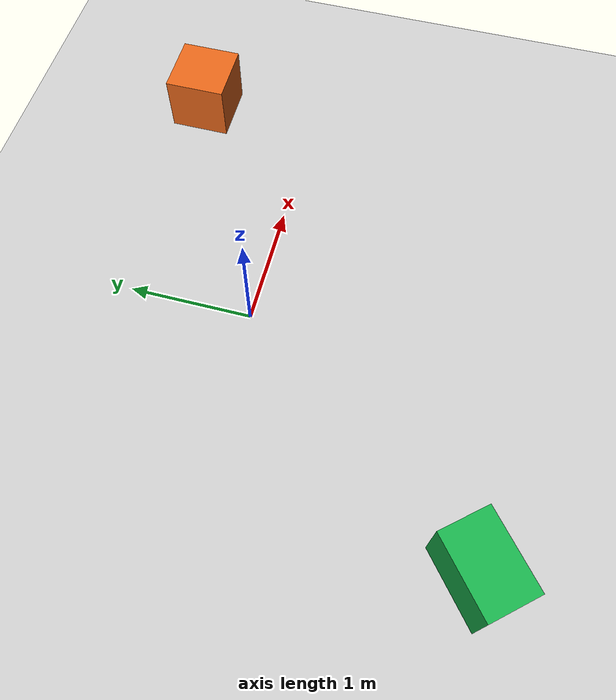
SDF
<?xml version="1.0" ?>
<sdf version="1.8">
  <world name="empty_arena">

    <physics name="1ms" type="ignored">
      <max_step_size>0.001</max_step_size>
      <real_time_factor>1.0</real_time_factor>
    </physics>

    <plugin filename="gz-sim-physics-system"
            name="gz::sim::systems::Physics"/>
    <plugin filename="gz-sim-user-commands-system"
            name="gz::sim::systems::UserCommands"/>
    <plugin filename="gz-sim-scene-broadcaster-system"
            name="gz::sim::systems::SceneBroadcaster"/>
    <plugin filename="gz-sim-imu-system"
            name="gz::sim::systems::Imu"/>
    <plugin filename="gz-sim-sensors-system"
            name="gz::sim::systems::Sensors">
      <render_engine>ogre2</render_engine>
    </plugin>

    <light type="directional" name="sun">
      <cast_shadows>true</cast_shadows>
      <pose>0 0 10 0 0 0</pose>
      <diffuse>1 1 1 1</diffuse>
      <specular>0.5 0.5 0.5 1</specular>
      <direction>-0.5 0.1 -0.9</direction>
    </light>

    <model name="ground_plane">
      <static>true</static>
      <link name="link">
        <collision name="c"><geometry><plane><normal>0 0 1</normal><size>50 50</size></plane></geometry></collision>
        <visual    name="v">
          <geometry><plane><normal>0 0 1</normal><size>50 50</size></plane></geometry>
          <material><ambient>0.8 0.8 0.8 1</ambient><diffuse>0.8 0.8 0.8 1</diffuse></material>
        </visual>
      </link>
    </model>

    <!-- A couple of obstacles -->
    <model name="box_a">
      <static>true</static>
      <pose>2 1 0.25 0 0 0</pose>
      <link name="l">
        <collision name="c"><geometry><box><size>0.5 0.5 0.5</size></box></geometry></collision>
        <visual    name="v"><geometry><box><size>0.5 0.5 0.5</size></box></geometry>
          <material><ambient>0.9 0.4 0.1 1</ambient><diffuse>0.9 0.4 0.1 1</diffuse></material>
        </visual>
      </link>
    </model>

    <model name="box_b">
      <static>true</static>
      <pose>-1.5 -2 0.25 0 0 0.7</pose>
      <link name="l">
        <collision name="c"><geometry><box><size>0.6 0.4 0.5</size></box></geometry></collision>
        <visual    name="v"><geometry><box><size>0.6 0.4 0.5</size></box></geometry>
          <material><ambient>0.1 0.7 0.3 1</ambient><diffuse>0.1 0.7 0.3 1</diffuse></material>
        </visual>
      </link>
    </model>

    <!-- Camara CENITAL: vista superior estatica a 25 m mirando hacia -Z.
         Publica gz.msgs.Image en /overhead/image (bridge en sim_summit). -->
    <model name="overhead_camera">
      <static>true</static>
      <pose>0 0 25 0 1.5707963 0</pose>
      <link name="link">
        <sensor name="overhead" type="camera">
          <topic>/overhead/image</topic>
          <update_rate>15</update_rate>
          <camera>
            <horizontal_fov>1.2</horizontal_fov>
            <image><width>800</width><height>800</height><format>R8G8B8</format></image>
            <clip><near>0.1</near><far>60.0</far></clip>
          </camera>
          <always_on>1</always_on>
          <visualize>false</visualize>
        </sensor>
      </link>
    </model>

  </world>
</sdf>
